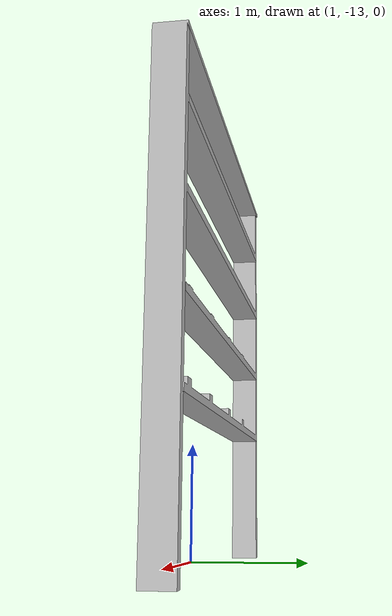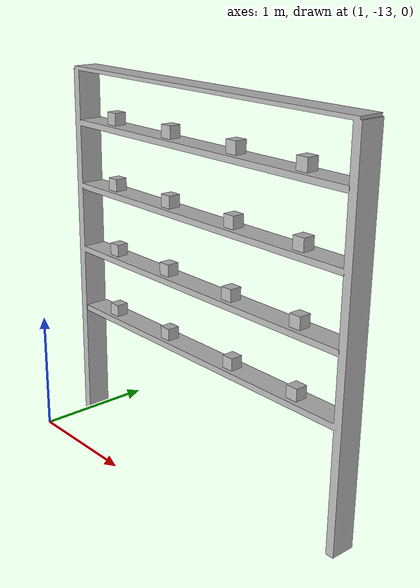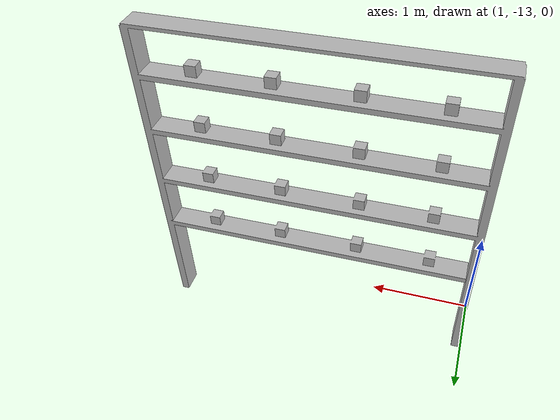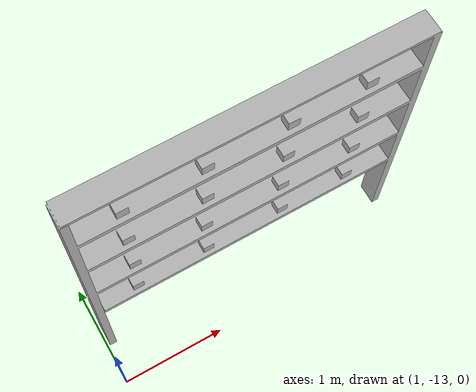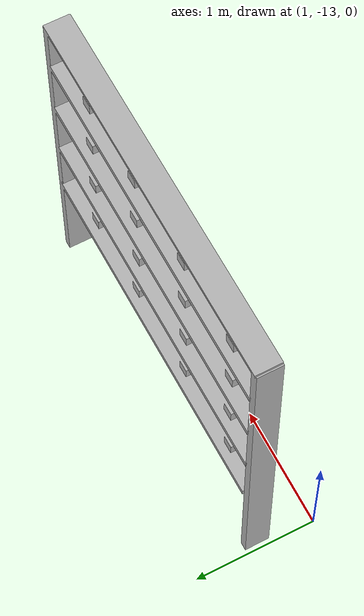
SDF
<?xml version="1.0" ?>
<sdf version="1.9">
  <model name="Estante">
    <static>true</static> <!-- Define como false para que o objeto tenha física -->
    <link name="link_E">
      <pose>7.2 -15 0 -11 0 11</pose>

      <inertial>
        <mass>5.0</mass> <!-- Define a massa do objeto -->
        <inertia> <!-- Define o momento de inércia -->
          <ixx>0.2</ixx>
          <ixy>0.2</ixy>
          <ixz>0.2</ixz>
        </inertia>
      </inertial>
      <gravity>true</gravity>
      <collision name="collision">
        <geometry>
          <mesh>
            <uri>model://Estante/meshes/estantedef.obj</uri>
            <scale>1 1 1</scale>
          </mesh>
        </geometry>
      </collision>

      <visual name="visual">
        <geometry>
          <mesh>
            <uri>model://Estante/meshes/estantedef.obj</uri>
            <scale>1 1 1</scale>
          </mesh>
        </geometry>
      </visual>
    </link>
  </model>
</sdf>
